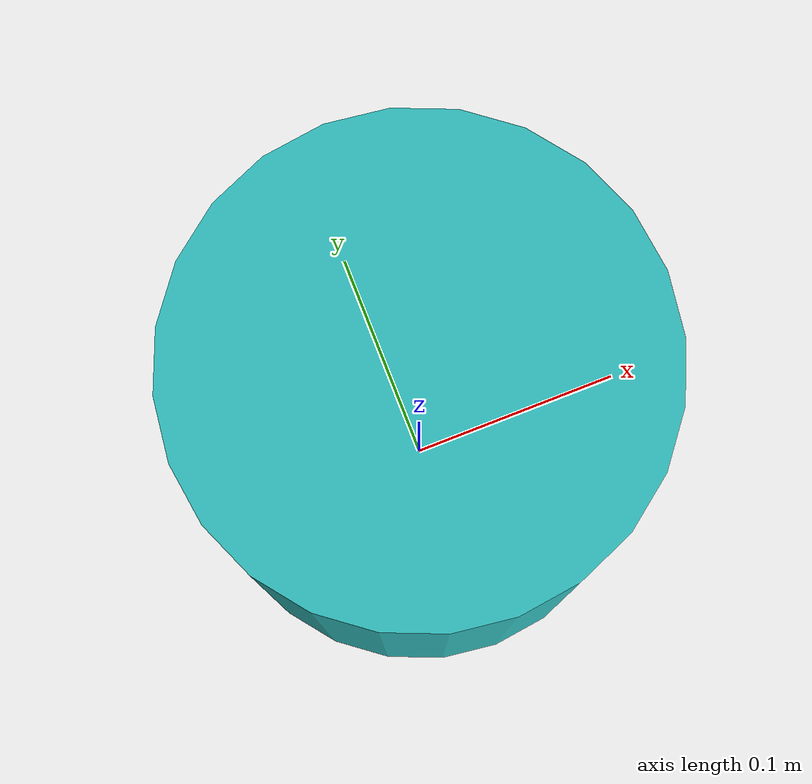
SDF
<?xml version="1.0"?>
<sdf version="1.4">
<model name="beacon_turquoise">
  <static>false</static>
  <link name='beacon_turquoise'>
    <pose frame=''>0 0 0.125 0 0 0</pose>
    <collision name='coll'>
      <geometry>
        <cylinder>
          <radius>0.1</radius>
          <length>0.25</length>
        </cylinder>
      </geometry>
      <max_contacts>10</max_contacts>
    </collision>
    <visual name='vis'>
      <geometry>
        <cylinder>
          <radius>0.1</radius>
          <length>0.25</length>
        </cylinder>
      </geometry>
      <material>
        <script>
          <uri>file://media/materials/scripts/gazebo.material</uri>
          <name>Gazebo/Turquoise</name>
        </script>
      </material>
    </visual>
  </link>
  </model>
</sdf>
